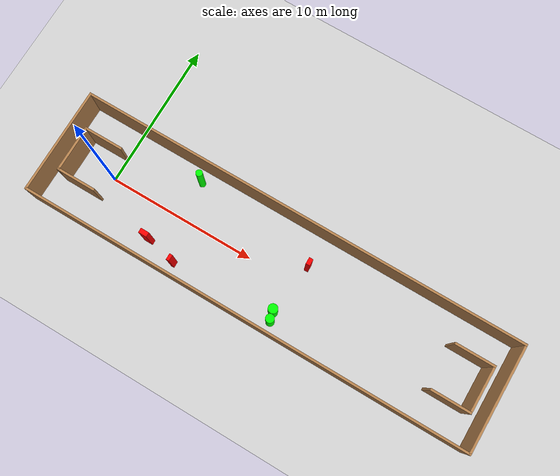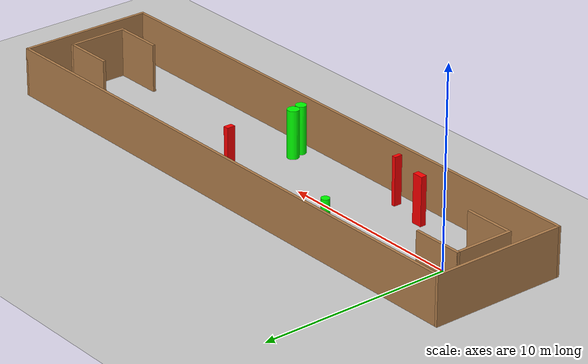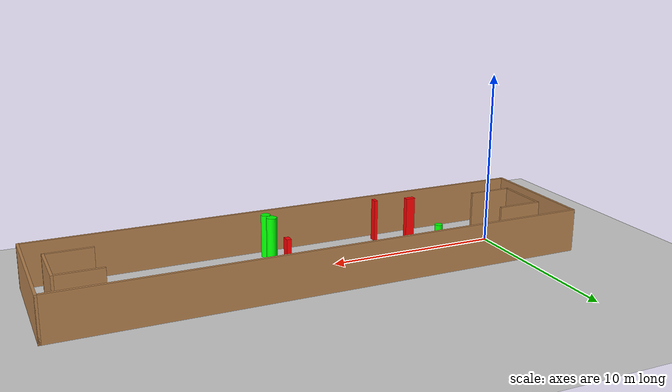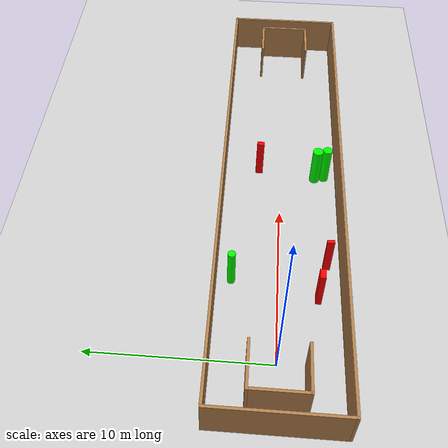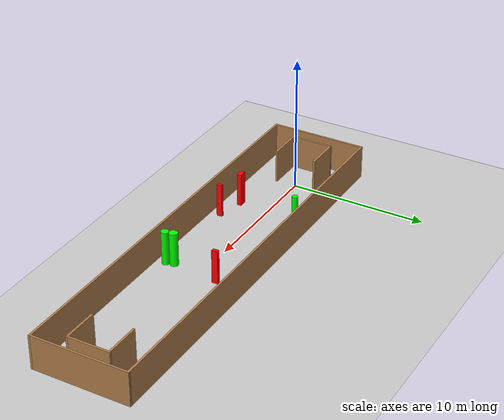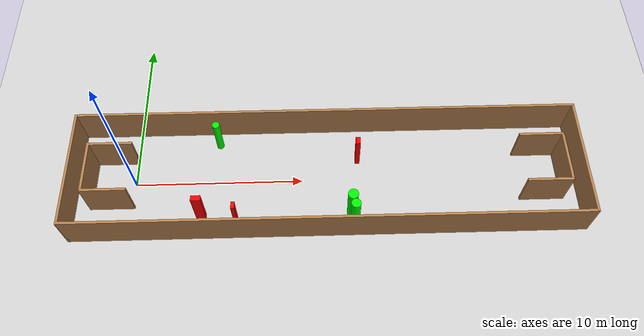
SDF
<sdf version="1.7">
 <world name="default">
  <light name="sun" type="directional">
   <pose>0 0 10 0 -0 0</pose>
   <diffuse>0.8 0.8 0.8 1</diffuse>
   <specular>0.2 0.2 0.2 1</specular>
   <attenuation>
    <range>1000</range>
    <constant>0.9</constant>
    <linear>0.01</linear>
    <quadratic>0.001</quadratic>
   </attenuation>
   <direction>-0.5 0.1 -0.9</direction>
   <spot><inner_angle>0</inner_angle><outer_angle>0</outer_angle><falloff>0</falloff></spot>
  </light>
  <model name="ground_plane">
   <static>1</static>
   <link name="link">
    <collision name="collision">
     <geometry><plane><normal>0 0 1</normal><size>100 100</size></plane></geometry>
     <surface>
      <contact><collide_bitmask>65535</collide_bitmask></contact>
      <friction><ode><mu>100</mu><mu2>50</mu2></ode></friction>
     </surface>
    </collision>
    <visual name="visual">
     <cast_shadows>0</cast_shadows>
     <geometry><plane><normal>0 0 1</normal><size>100 100</size></plane></geometry>
     <material>
      <script><uri>file://media/materials/scripts/gazebo.material</uri><name>Gazebo/Grey</name></script>
     </material>
    </visual>
   </link>
  </model>
  <gravity>0 0 -9.8</gravity>
  <magnetic_field>6e-06 2.3e-05 -4.2e-05</magnetic_field>
  <atmosphere type="adiabatic"/>
  <physics type="ode">
   <max_step_size>0.001</max_step_size>
   <real_time_factor>1</real_time_factor>
   <real_time_update_rate>1000</real_time_update_rate>
  </physics>
  <scene><ambient>0.4 0.4 0.4 1</ambient><background>0.7 0.7 0.7 1</background><shadows>1</shadows></scene>
  <spherical_coordinates>
   <surface_model>EARTH_WGS84</surface_model>
   <latitude_deg>0</latitude_deg>
   <longitude_deg>0</longitude_deg>
   <elevation>0</elevation>
   <heading_deg>0</heading_deg>
  </spherical_coordinates>
  <model name="my_base_walls">
   <link name="Wall_0">
    <collision name="Wall_0_Collision">
     <geometry><box><size>7.15 0.15 2.5</size></box></geometry>
     <pose>0 0 1.25 0 -0 0</pose>
    </collision>
    <visual name="Wall_0_Visual">
     <pose>0 0 1.25 0 -0 0</pose>
     <geometry><box><size>7.15 0.15 2.5</size></box></geometry>
     <material>
      <script><uri>file://media/materials/scripts/gazebo.material</uri><name>Gazebo/Wood</name></script>
      <ambient>1 1 1 1</ambient>
     </material>
     <meta><layer>0</layer></meta>
    </visual>
    <pose>-15 0 0 0 -0 1.5708</pose>
   </link>
   <link name="Wall_10">
    <collision name="Wall_10_Collision">
     <geometry><box><size>2.65 0.15 2.5</size></box></geometry>
     <pose>0 0 1.25 0 -0 0</pose>
    </collision>
    <visual name="Wall_10_Visual">
     <pose>0 0 1.25 0 -0 0</pose>
     <geometry><box><size>2.65 0.15 2.5</size></box></geometry>
     <material>
      <script><uri>file://media/materials/scripts/gazebo.material</uri><name>Gazebo/Wood</name></script>
      <ambient>1 1 1 1</ambient>
     </material>
     <meta><layer>0</layer></meta>
    </visual>
    <pose>-12.75 -1.5 0 0 -0 0</pose>
   </link>
   <link name="Wall_12">
    <collision name="Wall_12_Collision">
     <geometry><box><size>2.65 0.15 2.5</size></box></geometry>
     <pose>0 0 1.25 0 -0 0</pose>
    </collision>
    <visual name="Wall_12_Visual">
     <pose>0 0 1.25 0 -0 0</pose>
     <geometry><box><size>2.65 0.15 2.5</size></box></geometry>
     <material>
      <script><uri>file://media/materials/scripts/gazebo.material</uri><name>Gazebo/Wood</name></script>
      <ambient>1 1 1 1</ambient>
     </material>
     <meta><layer>0</layer></meta>
    </visual>
    <pose>-12.75 1.5 0 0 -0 0</pose>
   </link>
   <link name="Wall_14">
    <collision name="Wall_14_Collision">
     <geometry><box><size>3.15 0.15 2.5</size></box></geometry>
     <pose>0 0 1.25 0 -0 0</pose>
    </collision>
    <visual name="Wall_14_Visual">
     <pose>0 0 1.25 0 -0 0</pose>
     <geometry><box><size>3.15 0.15 2.5</size></box></geometry>
     <material>
      <script><uri>file://media/materials/scripts/gazebo.material</uri><name>Gazebo/Wood</name></script>
      <ambient>1 1 1 1</ambient>
     </material>
     <meta><layer>0</layer></meta>
    </visual>
    <pose>14 0 0 0 -0 -1.5708</pose>
   </link>
   <link name="Wall_15">
    <collision name="Wall_15_Collision">
     <geometry><box><size>2.65 0.15 2.5</size></box></geometry>
     <pose>0 0 1.25 0 -0 0</pose>
    </collision>
    <visual name="Wall_15_Visual">
     <pose>0 0 1.25 0 -0 0</pose>
     <geometry><box><size>2.65 0.15 2.5</size></box></geometry>
     <material>
      <script><uri>file://media/materials/scripts/gazebo.material</uri><name>Gazebo/Wood</name></script>
      <ambient>1 1 1 1</ambient>
     </material>
     <meta><layer>0</layer></meta>
    </visual>
    <pose>12.75 -1.5 0 0 -0 3.14159</pose>
   </link>
   <link name="Wall_17">
    <collision name="Wall_17_Collision">
     <geometry><box><size>2.65 0.15 2.5</size></box></geometry>
     <pose>0 0 1.25 0 -0 0</pose>
    </collision>
    <visual name="Wall_17_Visual">
     <pose>0 0 1.25 0 -0 0</pose>
     <geometry><box><size>2.65 0.15 2.5</size></box></geometry>
     <material>
      <script><uri>file://media/materials/scripts/gazebo.material</uri><name>Gazebo/Wood</name></script>
      <ambient>1 1 1 1</ambient>
     </material>
     <meta><layer>0</layer></meta>
    </visual>
    <pose>12.75 1.5 0 0 -0 3.14159</pose>
   </link>
   <link name="Wall_2">
    <collision name="Wall_2_Collision">
     <geometry><box><size>30.15 0.15 2.5</size></box></geometry>
     <pose>0 0 1.25 0 -0 0</pose>
    </collision>
    <visual name="Wall_2_Visual">
     <pose>0 0 1.25 0 -0 0</pose>
     <geometry><box><size>30.15 0.15 2.5</size></box></geometry>
     <material>
      <script><uri>file://media/materials/scripts/gazebo.material</uri><name>Gazebo/Wood</name></script>
      <ambient>1 1 1 1</ambient>
     </material>
     <meta><layer>0</layer></meta>
    </visual>
    <pose>-0 -3.5 0 0 -0 0</pose>
   </link>
   <link name="Wall_4">
    <collision name="Wall_4_Collision">
     <geometry><box><size>30.15 0.15 2.5</size></box></geometry>
     <pose>0 0 1.25 0 -0 0</pose>
    </collision>
    <visual name="Wall_4_Visual">
     <pose>0 0 1.25 0 -0 0</pose>
     <geometry><box><size>30.15 0.15 2.5</size></box></geometry>
     <material>
      <script><uri>file://media/materials/scripts/gazebo.material</uri><name>Gazebo/Wood</name></script>
      <ambient>1 1 1 1</ambient>
     </material>
     <meta><layer>0</layer></meta>
    </visual>
    <pose>-0 3.5 0 0 -0 0</pose>
   </link>
   <link name="Wall_6">
    <collision name="Wall_6_Collision">
     <geometry><box><size>7.15 0.15 2.5</size></box></geometry>
     <pose>0 0 1.25 0 -0 0</pose>
    </collision>
    <visual name="Wall_6_Visual">
     <pose>0 0 1.25 0 -0 0</pose>
     <geometry><box><size>7.15 0.15 2.5</size></box></geometry>
     <material>
      <script><uri>file://media/materials/scripts/gazebo.material</uri><name>Gazebo/Wood</name></script>
      <ambient>1 1 1 1</ambient>
     </material>
     <meta><layer>0</layer></meta>
    </visual>
    <pose>15 0 0 0 -0 -1.5708</pose>
   </link>
   <link name="Wall_9">
    <collision name="Wall_9_Collision">
     <geometry><box><size>3.15 0.15 2.5</size></box></geometry>
     <pose>0 0 1.25 0 -0 0</pose>
    </collision>
    <visual name="Wall_9_Visual">
     <pose>0 0 1.25 0 -0 0</pose>
     <geometry><box><size>3.15 0.15 2.5</size></box></geometry>
     <material>
      <script><uri>file://media/materials/scripts/gazebo.material</uri><name>Gazebo/Wood</name></script>
      <ambient>1 1 1 1</ambient>
     </material>
     <meta><layer>0</layer></meta>
    </visual>
    <pose>-14 0 0 0 -0 -1.5708</pose>
   </link>
   <static>1</static>
   <pose>11.5 0 0 0 -0 0</pose>
  </model>
  <model name="cylinder1">
   <static>1</static>
   <link name="link">
    <inertial>
     <mass>1</mass>
     <inertia><ixx>0.5</ixx><ixy>0</ixy><ixz>0</ixz><iyy>0.5</iyy><iyz>0</iyz><izz>1</izz></inertia>
    </inertial>
    <collision name="collision">
     <geometry><cylinder><radius>0.21676106462136546</radius><length>2.5</length></cylinder></geometry>
    </collision>
    <visual name="visual">
     <geometry><cylinder><radius>0.21676106462136546</radius><length>2.5</length></cylinder></geometry>
     <material>
      <ambient>0 1 0 1</ambient>
      <diffuse>0 1 0 1</diffuse>
      <specular>0.1 0.1 0.1 1</specular>
      <emissive>0 0 0 0</emissive>
     </material>
    </visual>
   </link>
   <pose>4.933864440157112 2.6067775393776635 1.25 0 0 0</pose>
  </model>
  <model name="cylinder2">
   <static>1</static>
   <link name="link">
    <inertial>
     <mass>1</mass>
     <inertia><ixx>0.5</ixx><ixy>0</ixy><ixz>0</ixz><iyy>0.5</iyy><iyz>0</iyz><izz>1</izz></inertia>
    </inertial>
    <collision name="collision">
     <geometry><cylinder><radius>0.3052762763577399</radius><length>2.5</length></cylinder></geometry>
    </collision>
    <visual name="visual">
     <geometry><cylinder><radius>0.3052762763577399</radius><length>2.5</length></cylinder></geometry>
     <material>
      <ambient>0 1 0 1</ambient>
      <diffuse>0 1 0 1</diffuse>
      <specular>0.1 0.1 0.1 1</specular>
      <emissive>0 0 0 0</emissive>
     </material>
    </visual>
   </link>
   <pose>12.931849812322236 -2.1369981058783662 1.25 0 0 0</pose>
  </model>
  <model name="cylinder3">
   <static>1</static>
   <link name="link">
    <inertial>
     <mass>1</mass>
     <inertia><ixx>0.5</ixx><ixy>0</ixy><ixz>0</ixz><iyy>0.5</iyy><iyz>0</iyz><izz>1</izz></inertia>
    </inertial>
    <collision name="collision">
     <geometry><cylinder><radius>0.27690271362195573</radius><length>2.5</length></cylinder></geometry>
    </collision>
    <visual name="visual">
     <geometry><cylinder><radius>0.27690271362195573</radius><length>2.5</length></cylinder></geometry>
     <material>
      <ambient>0 1 0 1</ambient>
      <diffuse>0 1 0 1</diffuse>
      <specular>0.1 0.1 0.1 1</specular>
      <emissive>0 0 0 0</emissive>
     </material>
    </visual>
   </link>
   <pose>13.070280257084884 -2.7160701651885675 1.25 0 0 0</pose>
  </model>
  <model name="box1">
   <static>1</static>
   <link name="link">
    <inertial>
     <mass>1</mass>
     <inertia><ixx>0.083</ixx><ixy>0</ixy><ixz>0</ixz><iyy>0.083</iyy><iyz>0</iyz><izz>0.083</izz></inertia>
    </inertial>
    <collision name="collision">
     <geometry><box><size>0.27304277183525333 0.4380832515243068 2.5</size></box></geometry>
    </collision>
    <visual name="visual">
     <geometry><box><size>0.27304277183525333 0.4380832515243068 2.5</size></box></geometry>
     <material>
      <ambient>1 0 0 1</ambient>
      <diffuse>1 0 0 1</diffuse>
      <specular>0.1 0.1 0.1 1</specular>
      <emissive>0 0 0 0</emissive>
     </material>
    </visual>
    <sensor name="my_contact" type="contact">
     <contact><collision>box_collision</collision><topic>__default_topic__</topic></contact>
    </sensor>
   </link>
   <pose>13.370340847676177 1.333850626867478 1.25 0 0 0</pose>
  </model>
  <model name="box2">
   <static>1</static>
   <link name="link">
    <inertial>
     <mass>1</mass>
     <inertia><ixx>0.083</ixx><ixy>0</ixy><ixz>0</ixz><iyy>0.083</iyy><iyz>0</iyz><izz>0.083</izz></inertia>
    </inertial>
    <collision name="collision">
     <geometry><box><size>0.5576875384722473 0.31227248625746723 2.5</size></box></geometry>
    </collision>
    <visual name="visual">
     <geometry><box><size>0.5576875384722473 0.31227248625746723 2.5</size></box></geometry>
     <material>
      <ambient>1 0 0 1</ambient>
      <diffuse>1 0 0 1</diffuse>
      <specular>0.1 0.1 0.1 1</specular>
      <emissive>0 0 0 0</emissive>
     </material>
    </visual>
    <sensor name="my_contact" type="contact">
     <contact><collision>box_collision</collision><topic>__default_topic__</topic></contact>
    </sensor>
   </link>
   <pose>4.045582528572876 -2.1758948816143584 1.25 0 0 0</pose>
  </model>
  <model name="box3">
   <static>1</static>
   <link name="link">
    <inertial>
     <mass>1</mass>
     <inertia><ixx>0.083</ixx><ixy>0</ixy><ixz>0</ixz><iyy>0.083</iyy><iyz>0</iyz><izz>0.083</izz></inertia>
    </inertial>
    <collision name="collision">
     <geometry><box><size>0.20145833060040874 0.4125790496154153 2.5</size></box></geometry>
    </collision>
    <visual name="visual">
     <geometry><box><size>0.20145833060040874 0.4125790496154153 2.5</size></box></geometry>
     <material>
      <ambient>1 0 0 1</ambient>
      <diffuse>1 0 0 1</diffuse>
      <specular>0.1 0.1 0.1 1</specular>
      <emissive>0 0 0 0</emissive>
     </material>
    </visual>
    <sensor name="my_contact" type="contact">
     <contact><collision>box_collision</collision><topic>__default_topic__</topic></contact>
    </sensor>
   </link>
   <pose>6.1470768843534405 -2.6616816451810044 1.25 0 0 0</pose>
  </model>
 </world>
</sdf>
